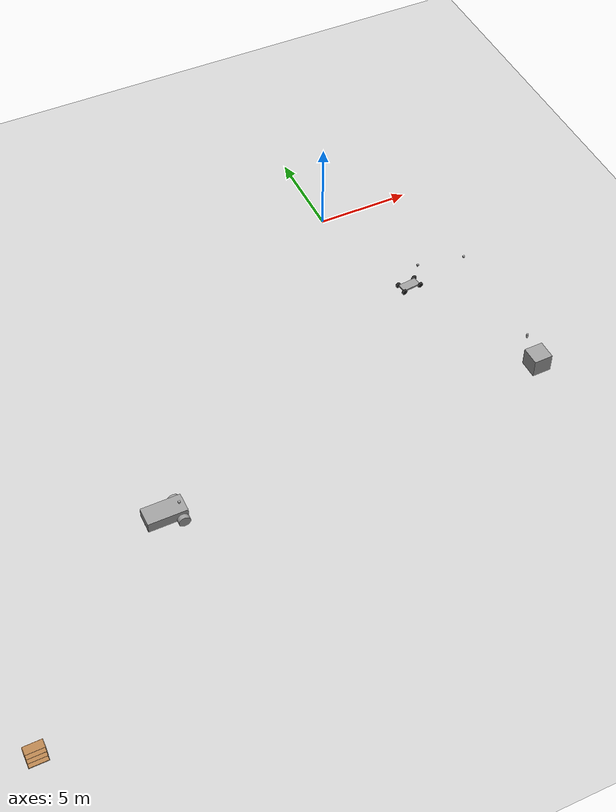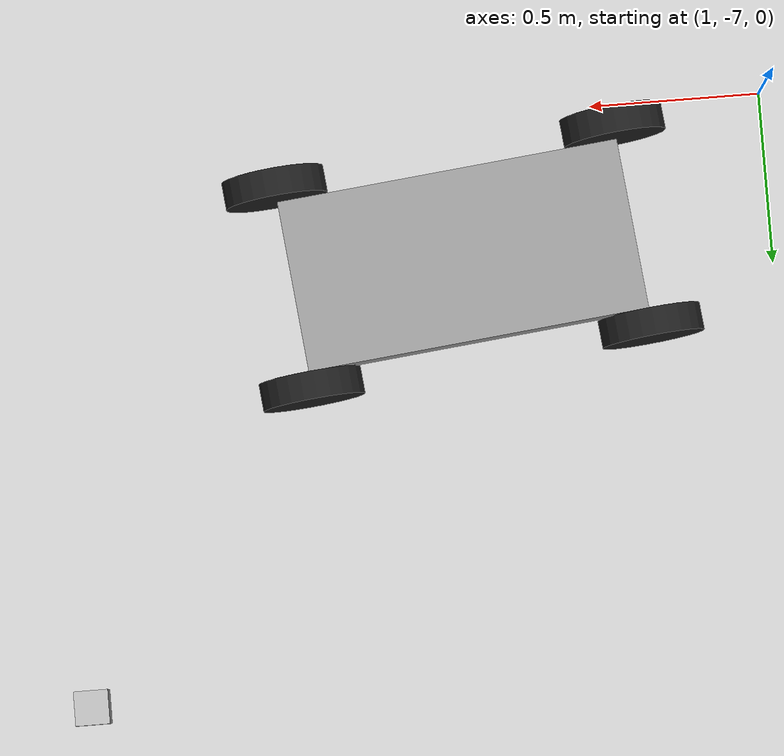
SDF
<sdf version="1.7">
 <world name="default">
  <light name="sun" type="directional">
   <pose>0 0 10 0 -0 0</pose>
   <diffuse>0.8 0.8 0.8 1</diffuse>
   <specular>0.2 0.2 0.2 1</specular>
   <attenuation>
    <range>1000</range>
    <constant>0.9</constant>
    <linear>0.01</linear>
    <quadratic>0.001</quadratic>
   </attenuation>
   <direction>-0.5 0.1 -0.9</direction>
   <spot><inner_angle>0</inner_angle><outer_angle>0</outer_angle><falloff>0</falloff></spot>
  </light>
  <model name="ground_plane">
   <static>1</static>
   <link name="link">
    <collision name="collision">
     <geometry><plane><normal>0 0 1</normal><size>100 100</size></plane></geometry>
     <surface>
      <contact><collide_bitmask>65535</collide_bitmask></contact>
      <friction><ode><mu>100</mu><mu2>50</mu2></ode></friction>
     </surface>
    </collision>
    <visual name="visual">
     <cast_shadows>0</cast_shadows>
     <geometry><plane><normal>0 0 1</normal><size>100 100</size></plane></geometry>
     <material>
      <script><uri>file://media/materials/scripts/gazebo.material</uri><name>Gazebo/Grey</name></script>
     </material>
    </visual>
   </link>
  </model>
  <gravity>0 0 -9.8</gravity>
  <magnetic_field>6e-06 2.3e-05 -4.2e-05</magnetic_field>
  <atmosphere type="adiabatic"/>
  <physics type="ode">
   <max_step_size>0.001</max_step_size>
   <real_time_factor>1</real_time_factor>
   <real_time_update_rate>1000</real_time_update_rate>
  </physics>
  <scene><ambient>0.4 0.4 0.4 1</ambient><background>0.7 0.7 0.7 1</background><shadows>1</shadows></scene>
  <spherical_coordinates>
   <surface_model>EARTH_WGS84</surface_model>
   <latitude_deg>0</latitude_deg>
   <longitude_deg>0</longitude_deg>
   <elevation>0</elevation>
   <heading_deg>0</heading_deg>
  </spherical_coordinates>
  <model name="camera">
   <pose>5.63037 -5.84883 0.059992 2e-06 -3.5e-05 0.100807</pose>
   <link name="link">
    <inertial>
     <mass>0.1</mass>
     <inertia>
      <ixx>0.000166667</ixx>
      <iyy>0.000166667</iyy>
      <izz>0.000166667</izz>
      <ixy>0</ixy>
      <ixz>0</ixz>
      <iyz>0</iyz>
     </inertia>
    </inertial>
    <collision name="collision"><geometry><box><size>0.1 0.1 0.1</size></box></geometry></collision>
    <visual name="visual"><geometry><box><size>0.1 0.1 0.1</size></box></geometry></visual>
    <sensor name="camera" type="camera">
     <camera>
      <horizontal_fov>1.047</horizontal_fov>
      <image><width>320</width><height>240</height></image>
      <clip><near>0.1</near><far>100</far></clip>
     </camera>
     <always_on>1</always_on>
     <update_rate>30</update_rate>
     <visualize>1</visualize>
    </sensor>
   </link>
  </model>
  <model name="cart_front_steer">
   <link name="chassis">
    <pose>0 0 0.15 0 -0 0</pose>
    <inertial>
     <pose>0.1 0 0 0 -0 0</pose>
     <mass>10</mass>
     <inertia>
      <ixx>0.216667</ixx>
      <iyy>0.841667</iyy>
      <izz>1.04167</izz>
      <ixy>0</ixy>
      <ixz>0</ixz>
      <iyz>0</iyz>
     </inertia>
    </inertial>
    <collision name="collision"><geometry><box><size>1 0.5 0.1</size></box></geometry></collision>
    <visual name="visual">
     <geometry><box><size>1 0.5 0.1</size></box></geometry>
     <material>
      <script><uri>file://media/materials/scripts/gazebo.material</uri><name>Gazebo/Grey</name></script>
     </material>
    </visual>
   </link>
   <link name="wheel_front_left">
    <pose>0.5 0.298 0.15 -1.5708 -0.087266 0</pose>
    <inertial>
     <mass>0.5</mass>
     <inertia>
      <ixx>0.00307917</ixx>
      <iyy>0.00307917</iyy>
      <izz>0.005625</izz>
      <ixy>0</ixy>
      <ixz>0</ixz>
      <iyz>0</iyz>
     </inertia>
    </inertial>
    <collision name="collision">
     <geometry><cylinder><radius>0.15</radius><length>0.08</length></cylinder></geometry>
    </collision>
    <visual name="visual">
     <geometry><cylinder><radius>0.15</radius><length>0.08</length></cylinder></geometry>
     <material>
      <script><uri>file://media/materials/scripts/gazebo.material</uri><name>Gazebo/Black</name></script>
     </material>
    </visual>
   </link>
   <joint name="wheel_front_left_steer_spin" type="universal">
    <parent>chassis</parent>
    <child>wheel_front_left</child>
    <axis>
     <xyz>0 -1 0</xyz>
     <limit><lower>-0.610865</lower><upper>0.610865</upper></limit>
     <dynamics><spring_reference>0</spring_reference><spring_stiffness>0</spring_stiffness></dynamics>
    </axis>
    <axis2>
     <xyz>0 0 1</xyz>
     <limit><upper>1e+16</upper><lower>-1e+16</lower></limit>
     <dynamics><spring_reference>0</spring_reference><spring_stiffness>0</spring_stiffness></dynamics>
    </axis2>
   </joint>
   <link name="wheel_front_right">
    <pose>0.5 -0.298 0.15 -1.5708 -0.087266 0</pose>
    <inertial>
     <mass>0.5</mass>
     <inertia>
      <ixx>0.00307917</ixx>
      <iyy>0.00307917</iyy>
      <izz>0.005625</izz>
      <ixy>0</ixy>
      <ixz>0</ixz>
      <iyz>0</iyz>
     </inertia>
    </inertial>
    <collision name="collision">
     <geometry><cylinder><radius>0.15</radius><length>0.08</length></cylinder></geometry>
    </collision>
    <visual name="visual">
     <geometry><cylinder><radius>0.15</radius><length>0.08</length></cylinder></geometry>
     <material>
      <script><uri>file://media/materials/scripts/gazebo.material</uri><name>Gazebo/Black</name></script>
     </material>
    </visual>
   </link>
   <joint name="wheel_front_right_steer_spin" type="universal">
    <parent>chassis</parent>
    <child>wheel_front_right</child>
    <axis>
     <xyz>0 -1 0</xyz>
     <limit><lower>-0.610865</lower><upper>0.610865</upper></limit>
     <dynamics><spring_reference>0</spring_reference><spring_stiffness>0</spring_stiffness></dynamics>
    </axis>
    <axis2>
     <xyz>0 0 1</xyz>
     <limit><upper>1e+16</upper><lower>-1e+16</lower></limit>
     <dynamics><spring_reference>0</spring_reference><spring_stiffness>0</spring_stiffness></dynamics>
    </axis2>
   </joint>
   <link name="wheel_rear_left">
    <pose>-0.5 0.298 0.15 -1.5708 0 0</pose>
    <inertial>
     <mass>0.5</mass>
     <inertia>
      <ixx>0.00307917</ixx>
      <iyy>0.00307917</iyy>
      <izz>0.005625</izz>
      <ixy>0</ixy>
      <ixz>0</ixz>
      <iyz>0</iyz>
     </inertia>
    </inertial>
    <collision name="collision">
     <geometry><cylinder><radius>0.15</radius><length>0.08</length></cylinder></geometry>
    </collision>
    <visual name="visual">
     <geometry><cylinder><radius>0.15</radius><length>0.08</length></cylinder></geometry>
     <material>
      <script><uri>file://media/materials/scripts/gazebo.material</uri><name>Gazebo/Black</name></script>
     </material>
    </visual>
   </link>
   <joint name="wheel_rear_left_spin" type="revolute">
    <parent>chassis</parent>
    <child>wheel_rear_left</child>
    <axis>
     <xyz>0 0 1</xyz>
     <limit><lower>-1e+16</lower><upper>1e+16</upper></limit>
     <dynamics><spring_reference>0</spring_reference><spring_stiffness>0</spring_stiffness></dynamics>
    </axis>
   </joint>
   <link name="wheel_rear_right">
    <pose>-0.5 -0.298 0.15 -1.5708 0 0</pose>
    <inertial>
     <mass>0.5</mass>
     <inertia>
      <ixx>0.00307917</ixx>
      <iyy>0.00307917</iyy>
      <izz>0.005625</izz>
      <ixy>0</ixy>
      <ixz>0</ixz>
      <iyz>0</iyz>
     </inertia>
    </inertial>
    <collision name="collision">
     <geometry><cylinder><radius>0.15</radius><length>0.08</length></cylinder></geometry>
    </collision>
    <visual name="visual">
     <geometry><cylinder><radius>0.15</radius><length>0.08</length></cylinder></geometry>
     <material>
      <script><uri>file://media/materials/scripts/gazebo.material</uri><name>Gazebo/Black</name></script>
     </material>
    </visual>
   </link>
   <joint name="wheel_rear_right_spin" type="revolute">
    <parent>chassis</parent>
    <child>wheel_rear_right</child>
    <axis>
     <xyz>0 0 1</xyz>
     <limit><lower>-1e+16</lower><upper>1e+16</upper></limit>
     <dynamics><spring_reference>0</spring_reference><spring_stiffness>0</spring_stiffness></dynamics>
    </axis>
   </joint>
   <pose>1.91147 -6.56923 0.009992 2.6e-05 -1e-06 0.107913</pose>
  </model>
  <model name="depth_camera">
   <link name="link">
    <pose>0 0 0.05 0 -0 0</pose>
    <inertial>
     <mass>0.1</mass>
     <inertia>
      <ixx>0.000166667</ixx>
      <iyy>0.000166667</iyy>
      <izz>0.000166667</izz>
      <ixy>0</ixy>
      <ixz>0</ixz>
      <iyz>0</iyz>
     </inertia>
    </inertial>
    <collision name="collision"><geometry><box><size>0.1 0.1 0.1</size></box></geometry></collision>
    <visual name="visual"><geometry><box><size>0.1 0.1 0.1</size></box></geometry></visual>
    <sensor name="camera" type="depth">
     <camera>
      <horizontal_fov>1.047</horizontal_fov>
      <image><width>320</width><height>240</height></image>
      <clip><near>0.1</near><far>100</far></clip>
     </camera>
     <always_on>1</always_on>
     <update_rate>30</update_rate>
     <visualize>1</visualize>
    </sensor>
   </link>
   <pose>3.0833 -5.3515 0.010014 9.2e-05 -0.000191 0.003432</pose>
  </model>
  <model name="unit_box">
   <pose>5.0035 -14.3992 0.654007 -2e-06 -1.5e-05 0.017659</pose>
   <link name="link">
    <inertial>
     <mass>1</mass>
     <inertia>
      <ixx>0.166667</ixx>
      <ixy>0</ixy>
      <ixz>0</ixz>
      <iyy>0.166667</iyy>
      <iyz>0</iyz>
      <izz>0.166667</izz>
     </inertia>
    </inertial>
    <collision name="collision"><geometry><box><size>1 1 1</size></box></geometry></collision>
    <visual name="visual">
     <geometry><box><size>1 1 1</size></box></geometry>
     <material>
      <script><name>Gazebo/Grey</name><uri>file://media/materials/scripts/gazebo.material</uri></script>
     </material>
    </visual>
   </link>
  </model>
  <model name="follower_vehicle">
   <pose>-15.2444 -15.0058 0.335008 -0 -8e-06 0.003413</pose>
   <link name="chassis">
    <pose>-0.151427 -0 0.175 0 -0 0</pose>
    <inertial>
     <mass>1.14395</mass>
     <inertia>
      <ixx>0.126164</ixx>
      <ixy>0</ixy>
      <ixz>0</ixz>
      <iyy>0.416519</iyy>
      <iyz>0</iyz>
      <izz>0.481014</izz>
     </inertia>
    </inertial>
    <visual name="visual">
     <geometry><box><size>2.01142 1 0.568726</size></box></geometry>
     <material>
      <script><uri>file://media/materials/scripts/gazebo.material</uri><name>Gazebo/Grey</name></script>
     </material>
    </visual>
    <collision name="collision">
     <geometry><box><size>2.01142 1 0.568726</size></box></geometry>
     <surface>
      <friction><ode><mu>1</mu><mu2>1</mu2><fdir1>0 0 0</fdir1><slip1>0</slip1><slip2>0</slip2></ode></friction>
      <bounce><restitution_coefficient>0</restitution_coefficient><threshold>1e+06</threshold></bounce>
      <contact>
       <collide_without_contact>0</collide_without_contact>
       <collide_without_contact_bitmask>1</collide_without_contact_bitmask>
       <collide_bitmask>1</collide_bitmask>
       <ode>
        <soft_cfm>0</soft_cfm>
        <soft_erp>0.2</soft_erp>
        <kp>1e+13</kp>
        <kd>1</kd>
        <max_vel>0.01</max_vel>
        <min_depth>0</min_depth>
       </ode>
      </contact>
     </surface>
    </collision>
   </link>
   <link name="wheel_1">
    <pose>0.554283 0.625029 -0.025 1.5707 -0 0</pose>
    <inertial>
     <mass>2</mass>
     <inertia><ixx>0.145833</ixx><ixy>0</ixy><ixz>0</ixz><iyy>0.145833</iyy><iyz>0</iyz><izz>0.125</izz></inertia>
    </inertial>
    <visual name="visual">
     <geometry><cylinder><radius>0.3</radius><length>0.25</length></cylinder></geometry>
     <material>
      <script><uri>file://media/materials/scripts/gazebo.material</uri><name>Gazebo/Grey</name></script>
     </material>
    </visual>
    <collision name="collision">
     <geometry><cylinder><radius>0.3</radius><length>0.25</length></cylinder></geometry>
     <surface>
      <friction><ode><mu>1</mu><mu2>1</mu2><fdir1>0 0 0</fdir1><slip1>0</slip1><slip2>0</slip2></ode></friction>
      <bounce><restitution_coefficient>0</restitution_coefficient><threshold>1e+06</threshold></bounce>
      <contact>
       <collide_without_contact>0</collide_without_contact>
       <collide_without_contact_bitmask>1</collide_without_contact_bitmask>
       <collide_bitmask>1</collide_bitmask>
       <ode>
        <soft_cfm>0</soft_cfm>
        <soft_erp>0.2</soft_erp>
        <kp>1e+13</kp>
        <kd>1</kd>
        <max_vel>0.01</max_vel>
        <min_depth>0</min_depth>
       </ode>
      </contact>
     </surface>
    </collision>
   </link>
   <link name="wheel_2">
    <pose>0.554282 -0.625029 -0.025 1.5707 -0 0</pose>
    <inertial>
     <mass>2</mass>
     <inertia><ixx>0.145833</ixx><ixy>0</ixy><ixz>0</ixz><iyy>0.145833</iyy><iyz>0</iyz><izz>0.125</izz></inertia>
    </inertial>
    <visual name="visual">
     <geometry><cylinder><radius>0.3</radius><length>0.25</length></cylinder></geometry>
     <material>
      <script><uri>file://media/materials/scripts/gazebo.material</uri><name>Gazebo/Grey</name></script>
     </material>
    </visual>
    <collision name="collision">
     <geometry><cylinder><radius>0.3</radius><length>0.25</length></cylinder></geometry>
     <surface>
      <friction><ode><mu>1</mu><mu2>1</mu2><fdir1>0 0 0</fdir1><slip1>0</slip1><slip2>0</slip2></ode></friction>
      <bounce><restitution_coefficient>0</restitution_coefficient><threshold>1e+06</threshold></bounce>
      <contact>
       <collide_without_contact>0</collide_without_contact>
       <collide_without_contact_bitmask>1</collide_without_contact_bitmask>
       <collide_bitmask>1</collide_bitmask>
       <ode>
        <soft_cfm>0</soft_cfm>
        <soft_erp>0.2</soft_erp>
        <kp>1e+13</kp>
        <kd>1</kd>
        <max_vel>0.01</max_vel>
        <min_depth>0</min_depth>
       </ode>
      </contact>
     </surface>
    </collision>
   </link>
   <link name="caster">
    <pose>-0.957138 -0 -0.125 0 -0 0</pose>
    <inertial>
     <mass>1</mass>
     <inertia><ixx>0.1</ixx><ixy>0</ixy><ixz>0</ixz><iyy>0.1</iyy><iyz>0</iyz><izz>0.1</izz></inertia>
    </inertial>
    <visual name="visual">
     <geometry><sphere><radius>0.2</radius></sphere></geometry>
     <material>
      <script><uri>file://media/materials/scripts/gazebo.material</uri><name>Gazebo/Grey</name></script>
     </material>
    </visual>
    <collision name="collision">
     <geometry><sphere><radius>0.2</radius></sphere></geometry>
     <surface>
      <friction><ode><mu>1</mu><mu2>1</mu2><fdir1>0 0 0</fdir1><slip1>0</slip1><slip2>0</slip2></ode></friction>
      <bounce><restitution_coefficient>0</restitution_coefficient><threshold>1e+06</threshold></bounce>
      <contact>
       <collide_without_contact>0</collide_without_contact>
       <collide_without_contact_bitmask>1</collide_without_contact_bitmask>
       <collide_bitmask>1</collide_bitmask>
       <ode>
        <soft_cfm>0</soft_cfm>
        <soft_erp>0.2</soft_erp>
        <kp>1e+13</kp>
        <kd>1</kd>
        <max_vel>0.01</max_vel>
        <min_depth>0</min_depth>
       </ode>
      </contact>
     </surface>
    </collision>
   </link>
   <model name="depth_camera">
    <link name="link">
     <pose>0.05 0.05 0.05 0 -0 0</pose>
     <inertial>
      <mass>0.1</mass>
      <inertia>
       <ixx>0.000166667</ixx>
       <iyy>0.000166667</iyy>
       <izz>0.000166667</izz>
       <ixy>0</ixy>
       <ixz>0</ixz>
       <iyz>0</iyz>
      </inertia>
     </inertial>
     <collision name="collision"><geometry><box><size>0.1 0.1 0.1</size></box></geometry></collision>
     <visual name="visual"><geometry><box><size>0.1 0.1 0.1</size></box></geometry></visual>
     <sensor name="camera" type="depth">
      <camera name="depth">
       <horizontal_fov>1.047</horizontal_fov>
       <image><width>320</width><height>240</height></image>
       <clip><near>0.1</near><far>100</far></clip>
      </camera>
      <always_on>1</always_on>
      <update_rate>30</update_rate>
      <visualize>1</visualize>
     </sensor>
    </link>
    <pose>0.569632 -0.03223 0.502056 0 -0 0</pose>
   </model>
   <joint name="chassis_wheel_1_revolute" type="revolute">
    <parent>chassis</parent>
    <child>wheel_1</child>
    <axis>
     <xyz>0 0 1</xyz>
     <limit>
      <lower>-1.79769e+308</lower>
      <upper>1.79769e+308</upper>
      <effort>-1</effort>
      <velocity>-1</velocity>
     </limit>
     <dynamics>
      <spring_reference>0</spring_reference>
      <spring_stiffness>0</spring_stiffness>
      <damping>0</damping>
      <friction>0</friction>
     </dynamics>
    </axis>
    <physics>
     <ode><limit><cfm>0</cfm><erp>0.2</erp></limit><suspension><cfm>0</cfm><erp>0.2</erp></suspension></ode>
    </physics>
   </joint>
   <joint name="chassis_wheel_2_revolute" type="revolute">
    <parent>chassis</parent>
    <child>wheel_2</child>
    <axis>
     <xyz>0 0 1</xyz>
     <limit>
      <lower>-1.79769e+308</lower>
      <upper>1.79769e+308</upper>
      <effort>-1</effort>
      <velocity>-1</velocity>
     </limit>
     <dynamics>
      <spring_reference>0</spring_reference>
      <spring_stiffness>0</spring_stiffness>
      <damping>0</damping>
      <friction>0</friction>
     </dynamics>
    </axis>
    <physics>
     <ode><limit><cfm>0</cfm><erp>0.2</erp></limit><suspension><cfm>0</cfm><erp>0.2</erp></suspension></ode>
    </physics>
   </joint>
   <joint name="chassis_caster_ball" type="ball">
    <parent>chassis</parent>
    <child>caster</child>
    <physics>
     <ode><limit><cfm>0</cfm><erp>0.2</erp></limit><suspension><cfm>0</cfm><erp>0.2</erp></suspension></ode>
    </physics>
   </joint>
   <joint name="chassis_depth_camera_link_fixed" type="fixed">
    <parent>chassis</parent>
    <child>depth_camera::link</child>
    <physics>
     <ode><limit><cfm>0</cfm><erp>0.2</erp></limit><suspension><cfm>0</cfm><erp>0.2</erp></suspension></ode>
    </physics>
   </joint>
   <static>0</static>
   <plugin name="follower" filename="libFollowerPlugin.so"/>
  </model>
  <model name="beer">
   <link name="link">
    <pose>0 0 0.115 0 -0 0</pose>
    <inertial>
     <mass>0.39</mass>
     <inertia><ixx>0.00058</ixx><ixy>0</ixy><ixz>0</ixz><iyy>0.00058</iyy><iyz>0</iyz><izz>0.00019</izz></inertia>
    </inertial>
    <collision name="collision">
     <geometry><cylinder><radius>0.055</radius><length>0.23</length></cylinder></geometry>
    </collision>
    <visual name="visual">
     <geometry><cylinder><radius>0.055</radius><length>0.23</length></cylinder></geometry>
     <material>
      <script>
       <uri>model://beer/materials/scripts</uri>
       <uri>model://beer/materials/textures</uri>
       <name>Beer/Diffuse</name>
      </script>
     </material>
    </visual>
   </link>
   <pose>5.69302 -12.3846 0.009998 0 -0 -9e-06</pose>
  </model>
  <model name="bookshelf">
   <static>1</static>
   <link name="link">
    <inertial><mass>1</mass></inertial>
    <collision name="back">
     <pose>0 0.005 0.6 0 -0 0</pose>
     <geometry><box><size>0.9 0.01 1.2</size></box></geometry>
    </collision>
    <visual name="visual1">
     <pose>0 0.005 0.6 0 -0 0</pose>
     <geometry><box><size>0.9 0.01 1.2</size></box></geometry>
     <material>
      <script><uri>file://media/materials/scripts/gazebo.material</uri><name>Gazebo/Wood</name></script>
     </material>
    </visual>
    <collision name="left_side">
     <pose>0.45 -0.195 0.6 0 -0 0</pose>
     <geometry><box><size>0.02 0.4 1.2</size></box></geometry>
    </collision>
    <visual name="visual2">
     <pose>0.45 -0.195 0.6 0 -0 0</pose>
     <geometry><box><size>0.02 0.4 1.2</size></box></geometry>
     <material>
      <script><uri>file://media/materials/scripts/gazebo.material</uri><name>Gazebo/Wood</name></script>
     </material>
    </visual>
    <collision name="right_side">
     <pose>-0.45 -0.195 0.6 0 -0 0</pose>
     <geometry><box><size>0.02 0.4 1.2</size></box></geometry>
    </collision>
    <visual name="visual3">
     <pose>-0.45 -0.195 0.6 0 -0 0</pose>
     <geometry><box><size>0.02 0.4 1.2</size></box></geometry>
     <material>
      <script><uri>file://media/materials/scripts/gazebo.material</uri><name>Gazebo/Wood</name></script>
     </material>
    </visual>
    <collision name="bottom">
     <pose>0 -0.195 0.03 0 -0 0</pose>
     <geometry><box><size>0.88 0.4 0.06</size></box></geometry>
    </collision>
    <visual name="visual4">
     <pose>0 -0.195 0.03 0 -0 0</pose>
     <geometry><box><size>0.88 0.4 0.06</size></box></geometry>
     <material>
      <script><uri>file://media/materials/scripts/gazebo.material</uri><name>Gazebo/Wood</name></script>
     </material>
    </visual>
    <collision name="top">
     <pose>0 -0.195 1.19 0 -0 0</pose>
     <geometry><box><size>0.88 0.4 0.02</size></box></geometry>
    </collision>
    <visual name="visual5">
     <pose>0 -0.195 1.19 0 -0 0</pose>
     <geometry><box><size>0.88 0.4 0.02</size></box></geometry>
     <material>
      <script><uri>file://media/materials/scripts/gazebo.material</uri><name>Gazebo/Wood</name></script>
     </material>
    </visual>
    <collision name="low_shelf">
     <pose>0 -0.195 0.43 0 -0 0</pose>
     <geometry><box><size>0.88 0.4 0.02</size></box></geometry>
    </collision>
    <visual name="visual6">
     <pose>0 -0.195 0.43 0 -0 0</pose>
     <geometry><box><size>0.88 0.4 0.02</size></box></geometry>
     <material>
      <script><uri>file://media/materials/scripts/gazebo.material</uri><name>Gazebo/Wood</name></script>
     </material>
    </visual>
    <collision name="high_shelf">
     <pose>0 -0.195 0.8 0 -0 0</pose>
     <geometry><box><size>0.88 0.4 0.02</size></box></geometry>
    </collision>
    <visual name="visual7">
     <pose>0 -0.195 0.8 0 -0 0</pose>
     <geometry><box><size>0.88 0.4 0.02</size></box></geometry>
     <material>
      <script><uri>file://media/materials/scripts/gazebo.material</uri><name>Gazebo/Wood</name></script>
     </material>
    </visual>
   </link>
   <pose>-24.631 -23.8143 0 0 -0 0</pose>
  </model>
 </world>
</sdf>
